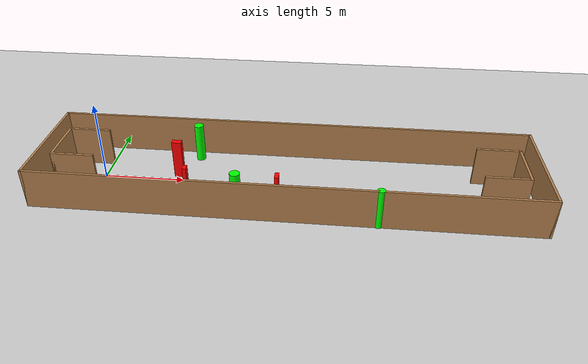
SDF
<sdf version="1.7">
 <world name="default">
  <light name="sun" type="directional">
   <pose>0 0 10 0 -0 0</pose>
   <diffuse>0.8 0.8 0.8 1</diffuse>
   <specular>0.2 0.2 0.2 1</specular>
   <attenuation>
    <range>1000</range>
    <constant>0.9</constant>
    <linear>0.01</linear>
    <quadratic>0.001</quadratic>
   </attenuation>
   <direction>-0.5 0.1 -0.9</direction>
   <spot><inner_angle>0</inner_angle><outer_angle>0</outer_angle><falloff>0</falloff></spot>
  </light>
  <model name="ground_plane">
   <static>1</static>
   <link name="link">
    <collision name="collision">
     <geometry><plane><normal>0 0 1</normal><size>100 100</size></plane></geometry>
     <surface>
      <contact><collide_bitmask>65535</collide_bitmask></contact>
      <friction><ode><mu>100</mu><mu2>50</mu2></ode></friction>
     </surface>
    </collision>
    <visual name="visual">
     <cast_shadows>0</cast_shadows>
     <geometry><plane><normal>0 0 1</normal><size>100 100</size></plane></geometry>
     <material>
      <script><uri>file://media/materials/scripts/gazebo.material</uri><name>Gazebo/Grey</name></script>
     </material>
    </visual>
   </link>
  </model>
  <gravity>0 0 -9.8</gravity>
  <magnetic_field>6e-06 2.3e-05 -4.2e-05</magnetic_field>
  <atmosphere type="adiabatic"/>
  <physics type="ode">
   <max_step_size>0.001</max_step_size>
   <real_time_factor>1</real_time_factor>
   <real_time_update_rate>1000</real_time_update_rate>
  </physics>
  <scene><ambient>0.4 0.4 0.4 1</ambient><background>0.7 0.7 0.7 1</background><shadows>1</shadows></scene>
  <spherical_coordinates>
   <surface_model>EARTH_WGS84</surface_model>
   <latitude_deg>0</latitude_deg>
   <longitude_deg>0</longitude_deg>
   <elevation>0</elevation>
   <heading_deg>0</heading_deg>
  </spherical_coordinates>
  <model name="my_base_walls">
   <link name="Wall_0">
    <collision name="Wall_0_Collision">
     <geometry><box><size>7.15 0.15 2.5</size></box></geometry>
     <pose>0 0 1.25 0 -0 0</pose>
    </collision>
    <visual name="Wall_0_Visual">
     <pose>0 0 1.25 0 -0 0</pose>
     <geometry><box><size>7.15 0.15 2.5</size></box></geometry>
     <material>
      <script><uri>file://media/materials/scripts/gazebo.material</uri><name>Gazebo/Wood</name></script>
      <ambient>1 1 1 1</ambient>
     </material>
     <meta><layer>0</layer></meta>
    </visual>
    <pose>-15 0 0 0 -0 1.5708</pose>
   </link>
   <link name="Wall_10">
    <collision name="Wall_10_Collision">
     <geometry><box><size>2.65 0.15 2.5</size></box></geometry>
     <pose>0 0 1.25 0 -0 0</pose>
    </collision>
    <visual name="Wall_10_Visual">
     <pose>0 0 1.25 0 -0 0</pose>
     <geometry><box><size>2.65 0.15 2.5</size></box></geometry>
     <material>
      <script><uri>file://media/materials/scripts/gazebo.material</uri><name>Gazebo/Wood</name></script>
      <ambient>1 1 1 1</ambient>
     </material>
     <meta><layer>0</layer></meta>
    </visual>
    <pose>-12.75 -1.5 0 0 -0 0</pose>
   </link>
   <link name="Wall_12">
    <collision name="Wall_12_Collision">
     <geometry><box><size>2.65 0.15 2.5</size></box></geometry>
     <pose>0 0 1.25 0 -0 0</pose>
    </collision>
    <visual name="Wall_12_Visual">
     <pose>0 0 1.25 0 -0 0</pose>
     <geometry><box><size>2.65 0.15 2.5</size></box></geometry>
     <material>
      <script><uri>file://media/materials/scripts/gazebo.material</uri><name>Gazebo/Wood</name></script>
      <ambient>1 1 1 1</ambient>
     </material>
     <meta><layer>0</layer></meta>
    </visual>
    <pose>-12.75 1.5 0 0 -0 0</pose>
   </link>
   <link name="Wall_14">
    <collision name="Wall_14_Collision">
     <geometry><box><size>3.15 0.15 2.5</size></box></geometry>
     <pose>0 0 1.25 0 -0 0</pose>
    </collision>
    <visual name="Wall_14_Visual">
     <pose>0 0 1.25 0 -0 0</pose>
     <geometry><box><size>3.15 0.15 2.5</size></box></geometry>
     <material>
      <script><uri>file://media/materials/scripts/gazebo.material</uri><name>Gazebo/Wood</name></script>
      <ambient>1 1 1 1</ambient>
     </material>
     <meta><layer>0</layer></meta>
    </visual>
    <pose>14 0 0 0 -0 -1.5708</pose>
   </link>
   <link name="Wall_15">
    <collision name="Wall_15_Collision">
     <geometry><box><size>2.65 0.15 2.5</size></box></geometry>
     <pose>0 0 1.25 0 -0 0</pose>
    </collision>
    <visual name="Wall_15_Visual">
     <pose>0 0 1.25 0 -0 0</pose>
     <geometry><box><size>2.65 0.15 2.5</size></box></geometry>
     <material>
      <script><uri>file://media/materials/scripts/gazebo.material</uri><name>Gazebo/Wood</name></script>
      <ambient>1 1 1 1</ambient>
     </material>
     <meta><layer>0</layer></meta>
    </visual>
    <pose>12.75 -1.5 0 0 -0 3.14159</pose>
   </link>
   <link name="Wall_17">
    <collision name="Wall_17_Collision">
     <geometry><box><size>2.65 0.15 2.5</size></box></geometry>
     <pose>0 0 1.25 0 -0 0</pose>
    </collision>
    <visual name="Wall_17_Visual">
     <pose>0 0 1.25 0 -0 0</pose>
     <geometry><box><size>2.65 0.15 2.5</size></box></geometry>
     <material>
      <script><uri>file://media/materials/scripts/gazebo.material</uri><name>Gazebo/Wood</name></script>
      <ambient>1 1 1 1</ambient>
     </material>
     <meta><layer>0</layer></meta>
    </visual>
    <pose>12.75 1.5 0 0 -0 3.14159</pose>
   </link>
   <link name="Wall_2">
    <collision name="Wall_2_Collision">
     <geometry><box><size>30.15 0.15 2.5</size></box></geometry>
     <pose>0 0 1.25 0 -0 0</pose>
    </collision>
    <visual name="Wall_2_Visual">
     <pose>0 0 1.25 0 -0 0</pose>
     <geometry><box><size>30.15 0.15 2.5</size></box></geometry>
     <material>
      <script><uri>file://media/materials/scripts/gazebo.material</uri><name>Gazebo/Wood</name></script>
      <ambient>1 1 1 1</ambient>
     </material>
     <meta><layer>0</layer></meta>
    </visual>
    <pose>-0 -3.5 0 0 -0 0</pose>
   </link>
   <link name="Wall_4">
    <collision name="Wall_4_Collision">
     <geometry><box><size>30.15 0.15 2.5</size></box></geometry>
     <pose>0 0 1.25 0 -0 0</pose>
    </collision>
    <visual name="Wall_4_Visual">
     <pose>0 0 1.25 0 -0 0</pose>
     <geometry><box><size>30.15 0.15 2.5</size></box></geometry>
     <material>
      <script><uri>file://media/materials/scripts/gazebo.material</uri><name>Gazebo/Wood</name></script>
      <ambient>1 1 1 1</ambient>
     </material>
     <meta><layer>0</layer></meta>
    </visual>
    <pose>-0 3.5 0 0 -0 0</pose>
   </link>
   <link name="Wall_6">
    <collision name="Wall_6_Collision">
     <geometry><box><size>7.15 0.15 2.5</size></box></geometry>
     <pose>0 0 1.25 0 -0 0</pose>
    </collision>
    <visual name="Wall_6_Visual">
     <pose>0 0 1.25 0 -0 0</pose>
     <geometry><box><size>7.15 0.15 2.5</size></box></geometry>
     <material>
      <script><uri>file://media/materials/scripts/gazebo.material</uri><name>Gazebo/Wood</name></script>
      <ambient>1 1 1 1</ambient>
     </material>
     <meta><layer>0</layer></meta>
    </visual>
    <pose>15 0 0 0 -0 -1.5708</pose>
   </link>
   <link name="Wall_9">
    <collision name="Wall_9_Collision">
     <geometry><box><size>3.15 0.15 2.5</size></box></geometry>
     <pose>0 0 1.25 0 -0 0</pose>
    </collision>
    <visual name="Wall_9_Visual">
     <pose>0 0 1.25 0 -0 0</pose>
     <geometry><box><size>3.15 0.15 2.5</size></box></geometry>
     <material>
      <script><uri>file://media/materials/scripts/gazebo.material</uri><name>Gazebo/Wood</name></script>
      <ambient>1 1 1 1</ambient>
     </material>
     <meta><layer>0</layer></meta>
    </visual>
    <pose>-14 0 0 0 -0 -1.5708</pose>
   </link>
   <static>1</static>
   <pose>11.5 0 0 0 -0 0</pose>
  </model>
  <model name="cylinder1">
   <static>1</static>
   <link name="link">
    <inertial>
     <mass>1</mass>
     <inertia><ixx>0.5</ixx><ixy>0</ixy><ixz>0</ixz><iyy>0.5</iyy><iyz>0</iyz><izz>1</izz></inertia>
    </inertial>
    <collision name="collision">
     <geometry><cylinder><radius>0.30480933247535014</radius><length>2.5</length></cylinder></geometry>
    </collision>
    <visual name="visual">
     <geometry><cylinder><radius>0.30480933247535014</radius><length>2.5</length></cylinder></geometry>
     <material>
      <ambient>0 1 0 1</ambient>
      <diffuse>0 1 0 1</diffuse>
      <specular>0.1 0.1 0.1 1</specular>
      <emissive>0 0 0 0</emissive>
     </material>
    </visual>
   </link>
   <pose>8.776229944299825 -2.564055628165767 1.25 0 0 0</pose>
  </model>
  <model name="cylinder2">
   <static>1</static>
   <link name="link">
    <inertial>
     <mass>1</mass>
     <inertia><ixx>0.5</ixx><ixy>0</ixy><ixz>0</ixz><iyy>0.5</iyy><iyz>0</iyz><izz>1</izz></inertia>
    </inertial>
    <collision name="collision">
     <geometry><cylinder><radius>0.2864543029139569</radius><length>2.5</length></cylinder></geometry>
    </collision>
    <visual name="visual">
     <geometry><cylinder><radius>0.2864543029139569</radius><length>2.5</length></cylinder></geometry>
     <material>
      <ambient>0 1 0 1</ambient>
      <diffuse>0 1 0 1</diffuse>
      <specular>0.1 0.1 0.1 1</specular>
      <emissive>0 0 0 0</emissive>
     </material>
    </visual>
   </link>
   <pose>5.565332683831494 2.6583229702439137 1.25 0 0 0</pose>
  </model>
  <model name="cylinder3">
   <static>1</static>
   <link name="link">
    <inertial>
     <mass>1</mass>
     <inertia><ixx>0.5</ixx><ixy>0</ixy><ixz>0</ixz><iyy>0.5</iyy><iyz>0</iyz><izz>1</izz></inertia>
    </inertial>
    <collision name="collision">
     <geometry><cylinder><radius>0.22980336622553965</radius><length>2.5</length></cylinder></geometry>
    </collision>
    <visual name="visual">
     <geometry><cylinder><radius>0.22980336622553965</radius><length>2.5</length></cylinder></geometry>
     <material>
      <ambient>0 1 0 1</ambient>
      <diffuse>0 1 0 1</diffuse>
      <specular>0.1 0.1 0.1 1</specular>
      <emissive>0 0 0 0</emissive>
     </material>
    </visual>
   </link>
   <pose>17.06590884256085 -3.415419004996752 1.25 0 0 0</pose>
  </model>
  <model name="box1">
   <static>1</static>
   <link name="link">
    <inertial>
     <mass>1</mass>
     <inertia><ixx>0.083</ixx><ixy>0</ixy><ixz>0</ixz><iyy>0.083</iyy><iyz>0</iyz><izz>0.083</izz></inertia>
    </inertial>
    <collision name="collision">
     <geometry><box><size>0.23094522194142653 0.4031997348544112 2.5</size></box></geometry>
    </collision>
    <visual name="visual">
     <geometry><box><size>0.23094522194142653 0.4031997348544112 2.5</size></box></geometry>
     <material>
      <ambient>1 0 0 1</ambient>
      <diffuse>1 0 0 1</diffuse>
      <specular>0.1 0.1 0.1 1</specular>
      <emissive>0 0 0 0</emissive>
     </material>
    </visual>
    <sensor name="my_contact" type="contact">
     <contact><collision>box_collision</collision><topic>__default_topic__</topic></contact>
    </sensor>
   </link>
   <pose>5.795740055953594 -2.210055103711566 1.25 0 0 0</pose>
  </model>
  <model name="box2">
   <static>1</static>
   <link name="link">
    <inertial>
     <mass>1</mass>
     <inertia><ixx>0.083</ixx><ixy>0</ixy><ixz>0</ixz><iyy>0.083</iyy><iyz>0</iyz><izz>0.083</izz></inertia>
    </inertial>
    <collision name="collision">
     <geometry><box><size>0.5964972506047233 0.35387805240523473 2.5</size></box></geometry>
    </collision>
    <visual name="visual">
     <geometry><box><size>0.5964972506047233 0.35387805240523473 2.5</size></box></geometry>
     <material>
      <ambient>1 0 0 1</ambient>
      <diffuse>1 0 0 1</diffuse>
      <specular>0.1 0.1 0.1 1</specular>
      <emissive>0 0 0 0</emissive>
     </material>
    </visual>
    <sensor name="my_contact" type="contact">
     <contact><collision>box_collision</collision><topic>__default_topic__</topic></contact>
    </sensor>
   </link>
   <pose>4.644383756874749 0.5411572075255213 1.25 0 0 0</pose>
  </model>
  <model name="box3">
   <static>1</static>
   <link name="link">
    <inertial>
     <mass>1</mass>
     <inertia><ixx>0.083</ixx><ixy>0</ixy><ixz>0</ixz><iyy>0.083</iyy><iyz>0</iyz><izz>0.083</izz></inertia>
    </inertial>
    <collision name="collision">
     <geometry><box><size>0.2462488334037235 0.5201644502637665 2.5</size></box></geometry>
    </collision>
    <visual name="visual">
     <geometry><box><size>0.2462488334037235 0.5201644502637665 2.5</size></box></geometry>
     <material>
      <ambient>1 0 0 1</ambient>
      <diffuse>1 0 0 1</diffuse>
      <specular>0.1 0.1 0.1 1</specular>
      <emissive>0 0 0 0</emissive>
     </material>
    </visual>
    <sensor name="my_contact" type="contact">
     <contact><collision>box_collision</collision><topic>__default_topic__</topic></contact>
    </sensor>
   </link>
   <pose>11.197163890374858 -2.5346220812470928 1.25 0 0 0</pose>
  </model>
 </world>
</sdf>
